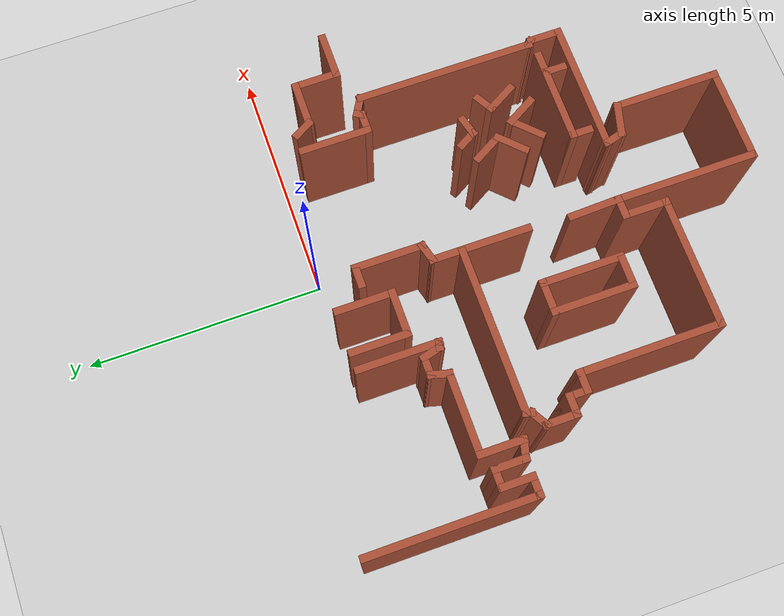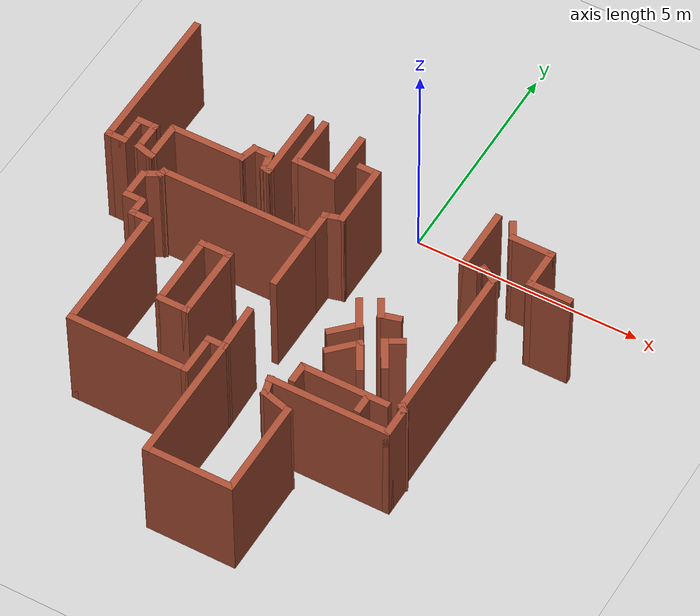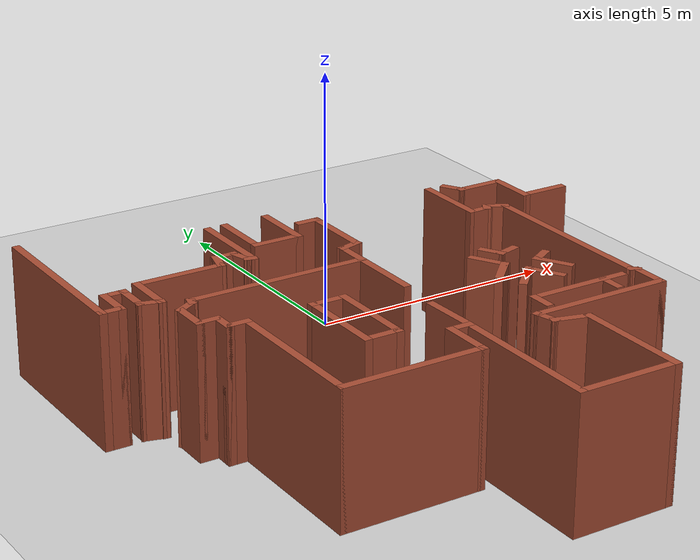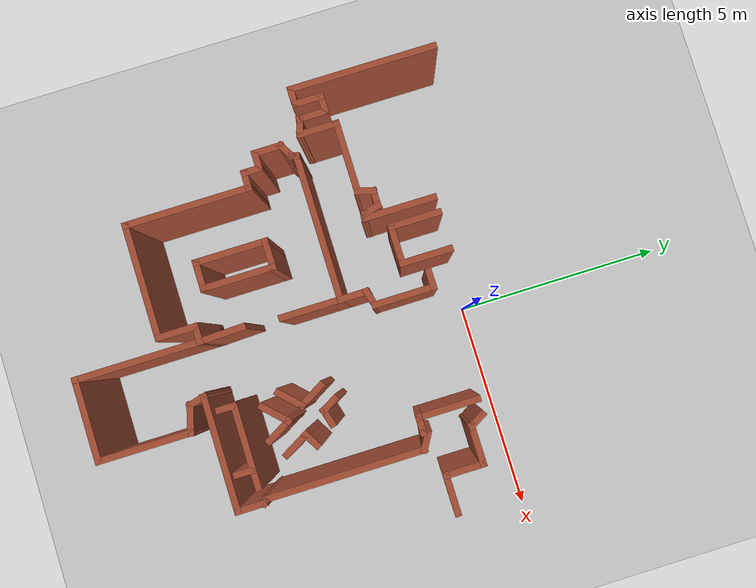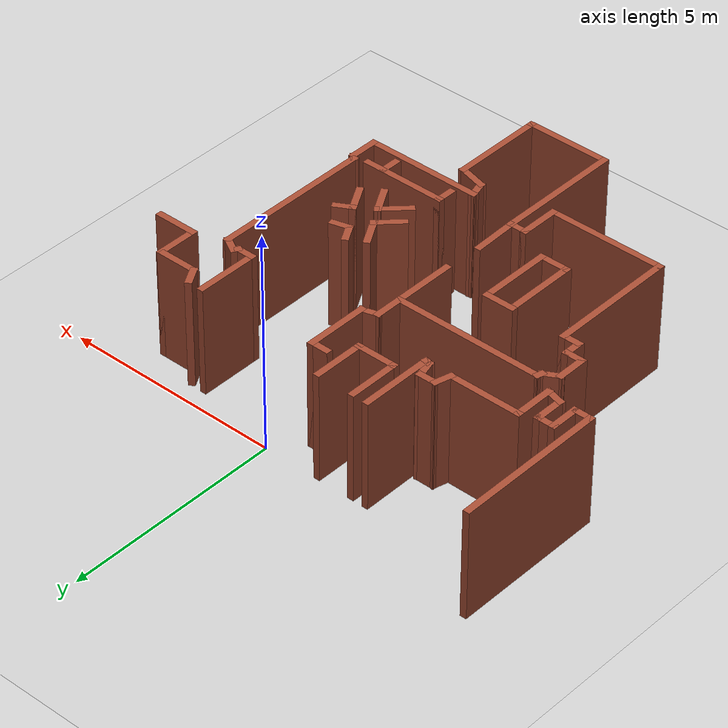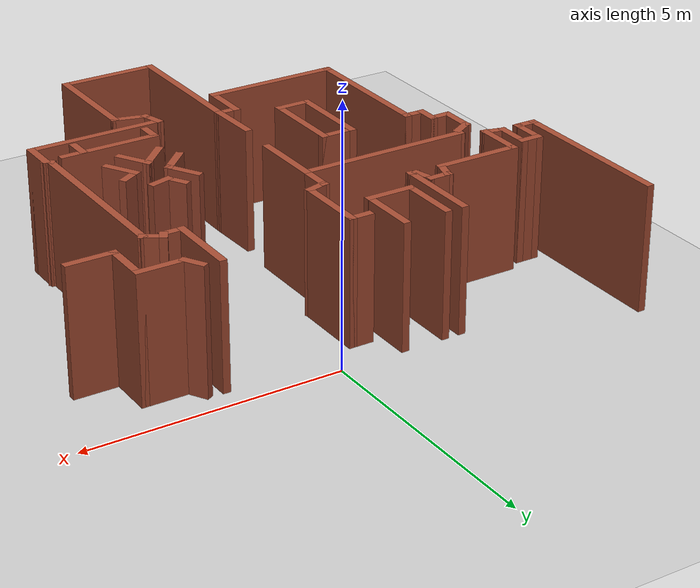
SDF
<sdf version="1.6">
 <world name="default">
  <model name="ground_plane">
   <static>1</static>
   <link name="link">
    <collision name="collision">
     <geometry><plane><normal>0 0 1</normal><size>100 100</size></plane></geometry>
     <surface>
      <contact><collide_bitmask>65535</collide_bitmask></contact>
      <friction><ode><mu>100</mu><mu2>50</mu2></ode></friction>
     </surface>
    </collision>
    <visual name="visual">
     <cast_shadows>0</cast_shadows>
     <geometry><plane><normal>0 0 1</normal><size>100 100</size></plane></geometry>
     <material>
      <script><uri>file://media/materials/scripts/gazebo.material</uri><name>Gazebo/Grey</name></script>
     </material>
    </visual>
   </link>
  </model>
  <model name="map_26">
   <pose>-0.762492 -0.95628 0 0 -0 0</pose>
   <link name="Wall_147">
    <collision name="Wall_147_Collision">
     <geometry><box><size>1.75 0.15 2.5</size></box></geometry>
     <pose>0 0 1.25 0 -0 0</pose>
    </collision>
    <visual name="Wall_147_Visual">
     <pose>0 0 1.25 0 -0 0</pose>
     <geometry><box><size>1.75 0.15 2.5</size></box></geometry>
     <material>
      <script><uri>file://media/materials/scripts/gazebo.material</uri><name>Gazebo/Bricks</name></script>
      <ambient>1 1 1 1</ambient>
     </material>
     <meta><layer>0</layer></meta>
    </visual>
    <pose>-1.90848 -3.76343 0 0 -0 -1.5708</pose>
   </link>
   <link name="Wall_148">
    <collision name="Wall_148_Collision">
     <geometry><box><size>0.75 0.15 2.5</size></box></geometry>
     <pose>0 0 1.25 0 -0 0</pose>
    </collision>
    <visual name="Wall_148_Visual">
     <pose>0 0 1.25 0 -0 0</pose>
     <geometry><box><size>0.75 0.15 2.5</size></box></geometry>
     <material>
      <script><uri>file://media/materials/scripts/gazebo.material</uri><name>Gazebo/Bricks</name></script>
      <ambient>1 1 1 1</ambient>
     </material>
     <meta><layer>0</layer></meta>
    </visual>
    <pose>-1.60848 -4.56343 0 0 -0 0</pose>
   </link>
   <link name="Wall_149">
    <collision name="Wall_149_Collision">
     <geometry><box><size>1.75 0.15 2.5</size></box></geometry>
     <pose>0 0 1.25 0 -0 0</pose>
    </collision>
    <visual name="Wall_149_Visual">
     <pose>0 0 1.25 0 -0 0</pose>
     <geometry><box><size>1.75 0.15 2.5</size></box></geometry>
     <material>
      <script><uri>file://media/materials/scripts/gazebo.material</uri><name>Gazebo/Bricks</name></script>
      <ambient>1 1 1 1</ambient>
     </material>
     <meta><layer>0</layer></meta>
    </visual>
    <pose>-1.30848 -3.76343 0 0 -0 1.5708</pose>
   </link>
   <link name="Wall_150">
    <collision name="Wall_150_Collision">
     <geometry><box><size>0.75 0.15 2.5</size></box></geometry>
     <pose>0 0 1.25 0 -0 0</pose>
    </collision>
    <visual name="Wall_150_Visual">
     <pose>0 0 1.25 0 -0 0</pose>
     <geometry><box><size>0.75 0.15 2.5</size></box></geometry>
     <material>
      <script><uri>file://media/materials/scripts/gazebo.material</uri><name>Gazebo/Bricks</name></script>
      <ambient>1 1 1 1</ambient>
     </material>
     <meta><layer>0</layer></meta>
    </visual>
    <pose>-1.60848 -2.96343 0 0 -0 -3.14159</pose>
   </link>
   <link name="Wall_152">
    <collision name="Wall_152_Collision">
     <geometry><box><size>1.5 0.15 2.5</size></box></geometry>
     <pose>0 0 1.25 0 -0 0</pose>
    </collision>
    <visual name="Wall_152_Visual">
     <pose>0 0 1.25 0 -0 0</pose>
     <geometry><box><size>1.5 0.15 2.5</size></box></geometry>
     <material>
      <script><uri>file://media/materials/scripts/gazebo.material</uri><name>Gazebo/Bricks</name></script>
      <ambient>1 1 1 1</ambient>
     </material>
     <meta><layer>0</layer></meta>
    </visual>
    <pose>-0.181178 -2.42316 0 0 -0 -1.5708</pose>
   </link>
   <link name="Wall_154">
    <collision name="Wall_154_Collision">
     <geometry><box><size>1.13912 0.15 2.5</size></box></geometry>
     <pose>0 0 1.25 0 -0 0</pose>
    </collision>
    <visual name="Wall_154_Visual">
     <pose>0 0 1.25 0 -0 0</pose>
     <geometry><box><size>1.13912 0.15 2.5</size></box></geometry>
     <material>
      <script><uri>file://media/materials/scripts/gazebo.material</uri><name>Gazebo/Bricks</name></script>
      <ambient>1 1 1 1</ambient>
     </material>
     <meta><layer>0</layer></meta>
    </visual>
    <pose>-0.226623 -4.47546 0 0 -0 -1.53752</pose>
   </link>
   <link name="Wall_156">
    <collision name="Wall_156_Collision">
     <geometry><box><size>2 0.15 2.5</size></box></geometry>
     <pose>0 0 1.25 0 -0 0</pose>
    </collision>
    <visual name="Wall_156_Visual">
     <pose>0 0 1.25 0 -0 0</pose>
     <geometry><box><size>2 0.15 2.5</size></box></geometry>
     <material>
      <script><uri>file://media/materials/scripts/gazebo.material</uri><name>Gazebo/Bricks</name></script>
      <ambient>1 1 1 1</ambient>
     </material>
     <meta><layer>0</layer></meta>
    </visual>
    <pose>2.27793 -4.65197 0 0 -0 0</pose>
   </link>
   <link name="Wall_160">
    <collision name="Wall_160_Collision">
     <geometry><box><size>0.5 0.15 2.5</size></box></geometry>
     <pose>0 0 1.25 0 -0 0</pose>
    </collision>
    <visual name="Wall_160_Visual">
     <pose>0 0 1.25 0 -0 0</pose>
     <geometry><box><size>0.5 0.15 2.5</size></box></geometry>
     <material>
      <script><uri>file://media/materials/scripts/gazebo.material</uri><name>Gazebo/Bricks</name></script>
      <ambient>1 1 1 1</ambient>
     </material>
     <meta><layer>0</layer></meta>
    </visual>
    <pose>1.35293 -4.82697 0 0 -0 -1.5708</pose>
   </link>
   <link name="Wall_162">
    <collision name="Wall_162_Collision">
     <geometry><box><size>0.5 0.15 2.5</size></box></geometry>
     <pose>0 0 1.25 0 -0 0</pose>
    </collision>
    <visual name="Wall_162_Visual">
     <pose>0 0 1.25 0 -0 0</pose>
     <geometry><box><size>0.5 0.15 2.5</size></box></geometry>
     <material>
      <script><uri>file://media/materials/scripts/gazebo.material</uri><name>Gazebo/Bricks</name></script>
      <ambient>1 1 1 1</ambient>
     </material>
     <meta><layer>0</layer></meta>
    </visual>
    <pose>2.81016 -4.8501 0 0 -0 -1.5708</pose>
   </link>
   <link name="Wall_164">
    <collision name="Wall_164_Collision">
     <geometry><box><size>0.5 0.15 2.5</size></box></geometry>
     <pose>0 0 1.25 0 -0 0</pose>
    </collision>
    <visual name="Wall_164_Visual">
     <pose>0 0 1.25 0 -0 0</pose>
     <geometry><box><size>0.5 0.15 2.5</size></box></geometry>
     <material>
      <script><uri>file://media/materials/scripts/gazebo.material</uri><name>Gazebo/Bricks</name></script>
      <ambient>1 1 1 1</ambient>
     </material>
     <meta><layer>0</layer></meta>
    </visual>
    <pose>1.94931 -2.65238 0 0 -0 -1.0472</pose>
   </link>
   <link name="Wall_165">
    <collision name="Wall_165_Collision">
     <geometry><box><size>0.5 0.15 2.5</size></box></geometry>
     <pose>0 0 1.25 0 -0 0</pose>
    </collision>
    <visual name="Wall_165_Visual">
     <pose>0 0 1.25 0 -0 0</pose>
     <geometry><box><size>0.5 0.15 2.5</size></box></geometry>
     <material>
      <script><uri>file://media/materials/scripts/gazebo.material</uri><name>Gazebo/Bricks</name></script>
      <ambient>1 1 1 1</ambient>
     </material>
     <meta><layer>0</layer></meta>
    </visual>
    <pose>2.20585 -2.75864 0 0 -0 0.261799</pose>
   </link>
   <link name="Wall_167">
    <collision name="Wall_167_Collision">
     <geometry><box><size>0.75 0.15 2.5</size></box></geometry>
     <pose>0 0 1.25 0 -0 0</pose>
    </collision>
    <visual name="Wall_167_Visual">
     <pose>0 0 1.25 0 -0 0</pose>
     <geometry><box><size>0.75 0.15 2.5</size></box></geometry>
     <material>
      <script><uri>file://media/materials/scripts/gazebo.material</uri><name>Gazebo/Bricks</name></script>
      <ambient>1 1 1 1</ambient>
     </material>
     <meta><layer>0</layer></meta>
    </visual>
    <pose>1.64172 -2.96881 0 0 -0 -1.0472</pose>
   </link>
   <link name="Wall_173">
    <collision name="Wall_173_Collision">
     <geometry><box><size>0.75 0.15 2.5</size></box></geometry>
     <pose>0 0 1.25 0 -0 0</pose>
    </collision>
    <visual name="Wall_173_Visual">
     <pose>0 0 1.25 0 -0 0</pose>
     <geometry><box><size>0.75 0.15 2.5</size></box></geometry>
     <material>
      <script><uri>file://media/materials/scripts/gazebo.material</uri><name>Gazebo/Bricks</name></script>
      <ambient>1 1 1 1</ambient>
     </material>
     <meta><layer>0</layer></meta>
    </visual>
    <pose>1.57959 -3.44075 0 0 -0 -2.35619</pose>
   </link>
   <link name="Wall_178">
    <collision name="Wall_178_Collision">
     <geometry><box><size>0.5 0.15 2.5</size></box></geometry>
     <pose>0 0 1.25 0 -0 0</pose>
    </collision>
    <visual name="Wall_178_Visual">
     <pose>0 0 1.25 0 -0 0</pose>
     <geometry><box><size>0.5 0.15 2.5</size></box></geometry>
     <material>
      <script><uri>file://media/materials/scripts/gazebo.material</uri><name>Gazebo/Bricks</name></script>
      <ambient>1 1 1 1</ambient>
     </material>
     <meta><layer>0</layer></meta>
    </visual>
    <pose>2.5685 -3.24602 0 0 -0 0.523599</pose>
   </link>
   <link name="Wall_180">
    <collision name="Wall_180_Collision">
     <geometry><box><size>0.75 0.15 2.5</size></box></geometry>
     <pose>0 0 1.25 0 -0 0</pose>
    </collision>
    <visual name="Wall_180_Visual">
     <pose>0 0 1.25 0 -0 0</pose>
     <geometry><box><size>0.75 0.15 2.5</size></box></geometry>
     <material>
      <script><uri>file://media/materials/scripts/gazebo.material</uri><name>Gazebo/Bricks</name></script>
      <ambient>1 1 1 1</ambient>
     </material>
     <meta><layer>0</layer></meta>
    </visual>
    <pose>2.56694 -3.59333 0 0 -0 -1.0472</pose>
   </link>
   <link name="Wall_182">
    <collision name="Wall_182_Collision">
     <geometry><box><size>0.75 0.15 2.5</size></box></geometry>
     <pose>0 0 1.25 0 -0 0</pose>
    </collision>
    <visual name="Wall_182_Visual">
     <pose>0 0 1.25 0 -0 0</pose>
     <geometry><box><size>0.75 0.15 2.5</size></box></geometry>
     <material>
      <script><uri>file://media/materials/scripts/gazebo.material</uri><name>Gazebo/Bricks</name></script>
      <ambient>1 1 1 1</ambient>
     </material>
     <meta><layer>0</layer></meta>
    </visual>
    <pose>2.17372 -3.8709 0 0 -0 -1.0472</pose>
   </link>
   <link name="Wall_184">
    <collision name="Wall_184_Collision">
     <geometry><box><size>0.804232 0.15 2.5</size></box></geometry>
     <pose>0 0 1.25 0 -0 0</pose>
    </collision>
    <visual name="Wall_184_Visual">
     <pose>0 0 1.25 0 -0 0</pose>
     <geometry><box><size>0.804232 0.15 2.5</size></box></geometry>
     <material>
      <script><uri>file://media/materials/scripts/gazebo.material</uri><name>Gazebo/Bricks</name></script>
      <ambient>1 1 1 1</ambient>
     </material>
     <meta><layer>0</layer></meta>
    </visual>
    <pose>1.79242 -3.8424 0 0 -0 0.785398</pose>
   </link>
   <link name="Wall_31">
    <collision name="Wall_31_Collision">
     <geometry><box><size>3.5 0.15 2.5</size></box></geometry>
     <pose>0 0 1.25 0 -0 0</pose>
    </collision>
    <visual name="Wall_31_Visual">
     <pose>0 0 1.25 0 -0 0</pose>
     <geometry><box><size>3.5 0.15 2.5</size></box></geometry>
     <material>
      <script><uri>file://media/materials/scripts/gazebo.material</uri><name>Gazebo/Bricks</name></script>
      <ambient>1 1 1 1</ambient>
     </material>
     <meta><layer>0</layer></meta>
    </visual>
    <pose>-5.00894 0.233898 0 0 -0 -1.5708</pose>
   </link>
   <link name="Wall_32">
    <collision name="Wall_32_Collision">
     <geometry><box><size>0.5 0.15 2.5</size></box></geometry>
     <pose>0 0 1.25 0 -0 0</pose>
    </collision>
    <visual name="Wall_32_Visual">
     <pose>0 0 1.25 0 -0 0</pose>
     <geometry><box><size>0.5 0.15 2.5</size></box></geometry>
     <material>
      <script><uri>file://media/materials/scripts/gazebo.material</uri><name>Gazebo/Bricks</name></script>
      <ambient>1 1 1 1</ambient>
     </material>
     <meta><layer>0</layer></meta>
    </visual>
    <pose>-4.83394 -1.4411 0 0 -0 0</pose>
   </link>
   <link name="Wall_35">
    <collision name="Wall_35_Collision">
     <geometry><box><size>0.75 0.15 2.5</size></box></geometry>
     <pose>0 0 1.25 0 -0 0</pose>
    </collision>
    <visual name="Wall_35_Visual">
     <pose>0 0 1.25 0 -0 0</pose>
     <geometry><box><size>0.75 0.15 2.5</size></box></geometry>
     <material>
      <script><uri>file://media/materials/scripts/gazebo.material</uri><name>Gazebo/Bricks</name></script>
      <ambient>1 1 1 1</ambient>
     </material>
     <meta><layer>0</layer></meta>
    </visual>
    <pose>-4.65894 -1.1411 0 0 -0 1.5708</pose>
   </link>
   <link name="Wall_36">
    <collision name="Wall_36_Collision">
     <geometry><box><size>0.5 0.15 2.5</size></box></geometry>
     <pose>0 0 1.25 0 -0 0</pose>
    </collision>
    <visual name="Wall_36_Visual">
     <pose>0 0 1.25 0 -0 0</pose>
     <geometry><box><size>0.5 0.15 2.5</size></box></geometry>
     <material>
      <script><uri>file://media/materials/scripts/gazebo.material</uri><name>Gazebo/Bricks</name></script>
      <ambient>1 1 1 1</ambient>
     </material>
     <meta><layer>0</layer></meta>
    </visual>
    <pose>-4.48394 -0.841102 0 0 -0 0</pose>
   </link>
   <link name="Wall_37">
    <collision name="Wall_37_Collision">
     <geometry><box><size>0.75 0.15 2.5</size></box></geometry>
     <pose>0 0 1.25 0 -0 0</pose>
    </collision>
    <visual name="Wall_37_Visual">
     <pose>0 0 1.25 0 -0 0</pose>
     <geometry><box><size>0.75 0.15 2.5</size></box></geometry>
     <material>
      <script><uri>file://media/materials/scripts/gazebo.material</uri><name>Gazebo/Bricks</name></script>
      <ambient>1 1 1 1</ambient>
     </material>
     <meta><layer>0</layer></meta>
    </visual>
    <pose>-4.30894 -1.1411 0 0 -0 -1.5708</pose>
   </link>
   <link name="Wall_38">
    <collision name="Wall_38_Collision">
     <geometry><box><size>0.5 0.15 2.5</size></box></geometry>
     <pose>0 0 1.25 0 -0 0</pose>
    </collision>
    <visual name="Wall_38_Visual">
     <pose>0 0 1.25 0 -0 0</pose>
     <geometry><box><size>0.5 0.15 2.5</size></box></geometry>
     <material>
      <script><uri>file://media/materials/scripts/gazebo.material</uri><name>Gazebo/Bricks</name></script>
      <ambient>1 1 1 1</ambient>
     </material>
     <meta><layer>0</layer></meta>
    </visual>
    <pose>-4.13991 -1.48639 0 0 -0 -0.261799</pose>
   </link>
   <link name="Wall_41">
    <collision name="Wall_41_Collision">
     <geometry><box><size>1 0.15 2.5</size></box></geometry>
     <pose>0 0 1.25 0 -0 0</pose>
    </collision>
    <visual name="Wall_41_Visual">
     <pose>0 0 1.25 0 -0 0</pose>
     <geometry><box><size>1 0.15 2.5</size></box></geometry>
     <material>
      <script><uri>file://media/materials/scripts/gazebo.material</uri><name>Gazebo/Bricks</name></script>
      <ambient>1 1 1 1</ambient>
     </material>
     <meta><layer>0</layer></meta>
    </visual>
    <pose>-3.97087 -1.10669 0 0 -0 1.5708</pose>
   </link>
   <link name="Wall_45">
    <collision name="Wall_45_Collision">
     <geometry><box><size>1.75 0.15 2.5</size></box></geometry>
     <pose>0 0 1.25 0 -0 0</pose>
    </collision>
    <visual name="Wall_45_Visual">
     <pose>0 0 1.25 0 -0 0</pose>
     <geometry><box><size>1.75 0.15 2.5</size></box></geometry>
     <material>
      <script><uri>file://media/materials/scripts/gazebo.material</uri><name>Gazebo/Bricks</name></script>
      <ambient>1 1 1 1</ambient>
     </material>
     <meta><layer>0</layer></meta>
    </visual>
    <pose>-3.17087 -0.681688 0 0 -0 0</pose>
   </link>
   <link name="Wall_46">
    <collision name="Wall_46_Collision">
     <geometry><box><size>0.5 0.15 2.5</size></box></geometry>
     <pose>0 0 1.25 0 -0 0</pose>
    </collision>
    <visual name="Wall_46_Visual">
     <pose>0 0 1.25 0 -0 0</pose>
     <geometry><box><size>0.5 0.15 2.5</size></box></geometry>
     <material>
      <script><uri>file://media/materials/scripts/gazebo.material</uri><name>Gazebo/Bricks</name></script>
      <ambient>1 1 1 1</ambient>
     </material>
     <meta><layer>0</layer></meta>
    </visual>
    <pose>-2.32558 -0.512651 0 0 -0 1.309</pose>
   </link>
   <link name="Wall_47">
    <collision name="Wall_47_Collision">
     <geometry><box><size>0.5 0.15 2.5</size></box></geometry>
     <pose>0 0 1.25 0 -0 0</pose>
    </collision>
    <visual name="Wall_47_Visual">
     <pose>0 0 1.25 0 -0 0</pose>
     <geometry><box><size>0.5 0.15 2.5</size></box></geometry>
     <material>
      <script><uri>file://media/materials/scripts/gazebo.material</uri><name>Gazebo/Bricks</name></script>
      <ambient>1 1 1 1</ambient>
     </material>
     <meta><layer>0</layer></meta>
    </visual>
    <pose>-2.10528 -0.343614 0 0 -0 0</pose>
   </link>
   <link name="Wall_48">
    <collision name="Wall_48_Collision">
     <geometry><box><size>0.5 0.15 2.5</size></box></geometry>
     <pose>0 0 1.25 0 -0 0</pose>
    </collision>
    <visual name="Wall_48_Visual">
     <pose>0 0 1.25 0 -0 0</pose>
     <geometry><box><size>0.5 0.15 2.5</size></box></geometry>
     <material>
      <script><uri>file://media/materials/scripts/gazebo.material</uri><name>Gazebo/Bricks</name></script>
      <ambient>1 1 1 1</ambient>
     </material>
     <meta><layer>0</layer></meta>
    </visual>
    <pose>-1.88499 -0.512651 0 0 -0 -1.309</pose>
   </link>
   <link name="Wall_49">
    <collision name="Wall_49_Collision">
     <geometry><box><size>0.25 0.15 2.5</size></box></geometry>
     <pose>0 0 1.25 0 -0 0</pose>
    </collision>
    <visual name="Wall_49_Visual">
     <pose>0 0 1.25 0 -0 0</pose>
     <geometry><box><size>0.25 0.15 2.5</size></box></geometry>
     <material>
      <script><uri>file://media/materials/scripts/gazebo.material</uri><name>Gazebo/Bricks</name></script>
      <ambient>1 1 1 1</ambient>
     </material>
     <meta><layer>0</layer></meta>
    </visual>
    <pose>-1.7914 -0.694629 0 0 -0 -0.261799</pose>
   </link>
   <link name="Wall_50">
    <collision name="Wall_50_Collision">
     <geometry><box><size>1.75 0.15 2.5</size></box></geometry>
     <pose>0 0 1.25 0 -0 0</pose>
    </collision>
    <visual name="Wall_50_Visual">
     <pose>0 0 1.25 0 -0 0</pose>
     <geometry><box><size>1.75 0.15 2.5</size></box></geometry>
     <material>
      <script><uri>file://media/materials/scripts/gazebo.material</uri><name>Gazebo/Bricks</name></script>
      <ambient>1 1 1 1</ambient>
     </material>
     <meta><layer>0</layer></meta>
    </visual>
    <pose>-1.7431 0.09243 0 0 -0 1.5708</pose>
   </link>
   <link name="Wall_52">
    <collision name="Wall_52_Collision">
     <geometry><box><size>1.25 0.15 2.5</size></box></geometry>
     <pose>0 0 1.25 0 -0 0</pose>
    </collision>
    <visual name="Wall_52_Visual">
     <pose>0 0 1.25 0 -0 0</pose>
     <geometry><box><size>1.25 0.15 2.5</size></box></geometry>
     <material>
      <script><uri>file://media/materials/scripts/gazebo.material</uri><name>Gazebo/Bricks</name></script>
      <ambient>1 1 1 1</ambient>
     </material>
     <meta><layer>0</layer></meta>
    </visual>
    <pose>-1.3931 0.34243 0 0 -0 -1.5708</pose>
   </link>
   <link name="Wall_53">
    <collision name="Wall_53_Collision">
     <geometry><box><size>1 0.15 2.5</size></box></geometry>
     <pose>0 0 1.25 0 -0 0</pose>
    </collision>
    <visual name="Wall_53_Visual">
     <pose>0 0 1.25 0 -0 0</pose>
     <geometry><box><size>1 0.15 2.5</size></box></geometry>
     <material>
      <script><uri>file://media/materials/scripts/gazebo.material</uri><name>Gazebo/Bricks</name></script>
      <ambient>1 1 1 1</ambient>
     </material>
     <meta><layer>0</layer></meta>
    </visual>
    <pose>-0.968104 -0.20757 0 0 -0 0</pose>
   </link>
   <link name="Wall_54">
    <collision name="Wall_54_Collision">
     <geometry><box><size>1.25 0.15 2.5</size></box></geometry>
     <pose>0 0 1.25 0 -0 0</pose>
    </collision>
    <visual name="Wall_54_Visual">
     <pose>0 0 1.25 0 -0 0</pose>
     <geometry><box><size>1.25 0.15 2.5</size></box></geometry>
     <material>
      <script><uri>file://media/materials/scripts/gazebo.material</uri><name>Gazebo/Bricks</name></script>
      <ambient>1 1 1 1</ambient>
     </material>
     <meta><layer>0</layer></meta>
    </visual>
    <pose>-0.543104 0.34243 0 0 -0 1.5708</pose>
   </link>
   <link name="Wall_57">
    <collision name="Wall_57_Collision">
     <geometry><box><size>0.5 0.15 2.5</size></box></geometry>
     <pose>0 0 1.25 0 -0 0</pose>
    </collision>
    <visual name="Wall_57_Visual">
     <pose>0 0 1.25 0 -0 0</pose>
     <geometry><box><size>0.5 0.15 2.5</size></box></geometry>
     <material>
      <script><uri>file://media/materials/scripts/gazebo.material</uri><name>Gazebo/Bricks</name></script>
      <ambient>1 1 1 1</ambient>
     </material>
     <meta><layer>0</layer></meta>
    </visual>
    <pose>-0.018104 0.29243 0 0 -0 0</pose>
   </link>
   <link name="Wall_58">
    <collision name="Wall_58_Collision">
     <geometry><box><size>1.5 0.15 2.5</size></box></geometry>
     <pose>0 0 1.25 0 -0 0</pose>
    </collision>
    <visual name="Wall_58_Visual">
     <pose>0 0 1.25 0 -0 0</pose>
     <geometry><box><size>1.5 0.15 2.5</size></box></geometry>
     <material>
      <script><uri>file://media/materials/scripts/gazebo.material</uri><name>Gazebo/Bricks</name></script>
      <ambient>1 1 1 1</ambient>
     </material>
     <meta><layer>0</layer></meta>
    </visual>
    <pose>0.156896 -0.38257 0 0 -0 -1.5708</pose>
   </link>
   <link name="Wall_59">
    <collision name="Wall_59_Collision">
     <geometry><box><size>0.5 0.15 2.5</size></box></geometry>
     <pose>0 0 1.25 0 -0 0</pose>
    </collision>
    <visual name="Wall_59_Visual">
     <pose>0 0 1.25 0 -0 0</pose>
     <geometry><box><size>0.5 0.15 2.5</size></box></geometry>
     <material>
      <script><uri>file://media/materials/scripts/gazebo.material</uri><name>Gazebo/Bricks</name></script>
      <ambient>1 1 1 1</ambient>
     </material>
     <meta><layer>0</layer></meta>
    </visual>
    <pose>-0.012141 -1.10286 0 0 -0 -2.87979</pose>
   </link>
   <link name="Wall_60">
    <collision name="Wall_60_Collision">
     <geometry><box><size>0.75 0.15 2.5</size></box></geometry>
     <pose>0 0 1.25 0 -0 0</pose>
    </collision>
    <visual name="Wall_60_Visual">
     <pose>0 0 1.25 0 -0 0</pose>
     <geometry><box><size>0.75 0.15 2.5</size></box></geometry>
     <material>
      <script><uri>file://media/materials/scripts/gazebo.material</uri><name>Gazebo/Bricks</name></script>
      <ambient>1 1 1 1</ambient>
     </material>
     <meta><layer>0</layer></meta>
    </visual>
    <pose>-0.181178 -1.44816 0 0 -0 -1.5708</pose>
   </link>
   <link name="Wall_61">
    <collision name="Wall_61_Collision">
     <geometry><box><size>3.5 0.15 2.5</size></box></geometry>
     <pose>0 0 1.25 0 -0 0</pose>
    </collision>
    <visual name="Wall_61_Visual">
     <pose>0 0 1.25 0 -0 0</pose>
     <geometry><box><size>3.5 0.15 2.5</size></box></geometry>
     <material>
      <script><uri>file://media/materials/scripts/gazebo.material</uri><name>Gazebo/Bricks</name></script>
      <ambient>1 1 1 1</ambient>
     </material>
     <meta><layer>0</layer></meta>
    </visual>
    <pose>-1.85618 -1.74816 0 0 -0 3.14159</pose>
   </link>
   <link name="Wall_62">
    <collision name="Wall_62_Collision">
     <geometry><box><size>0.25 0.15 2.5</size></box></geometry>
     <pose>0 0 1.25 0 -0 0</pose>
    </collision>
    <visual name="Wall_62_Visual">
     <pose>0 0 1.25 0 -0 0</pose>
     <geometry><box><size>0.25 0.15 2.5</size></box></geometry>
     <material>
      <script><uri>file://media/materials/scripts/gazebo.material</uri><name>Gazebo/Bricks</name></script>
      <ambient>1 1 1 1</ambient>
     </material>
     <meta><layer>0</layer></meta>
    </visual>
    <pose>-3.54412 -1.79645 0 0 -0 -1.8326</pose>
   </link>
   <link name="Wall_63">
    <collision name="Wall_63_Collision">
     <geometry><box><size>0.5 0.15 2.5</size></box></geometry>
     <pose>0 0 1.25 0 -0 0</pose>
    </collision>
    <visual name="Wall_63_Visual">
     <pose>0 0 1.25 0 -0 0</pose>
     <geometry><box><size>0.5 0.15 2.5</size></box></geometry>
     <material>
      <script><uri>file://media/materials/scripts/gazebo.material</uri><name>Gazebo/Bricks</name></script>
      <ambient>1 1 1 1</ambient>
     </material>
     <meta><layer>0</layer></meta>
    </visual>
    <pose>-3.70861 -1.93225 0 0 -0 -2.61799</pose>
   </link>
   <link name="Wall_64">
    <collision name="Wall_64_Collision">
     <geometry><box><size>0.75 0.15 2.5</size></box></geometry>
     <pose>0 0 1.25 0 -0 0</pose>
    </collision>
    <visual name="Wall_64_Visual">
     <pose>0 0 1.25 0 -0 0</pose>
     <geometry><box><size>0.75 0.15 2.5</size></box></geometry>
     <material>
      <script><uri>file://media/materials/scripts/gazebo.material</uri><name>Gazebo/Bricks</name></script>
      <ambient>1 1 1 1</ambient>
     </material>
     <meta><layer>0</layer></meta>
    </visual>
    <pose>-3.86017 -2.31975 0 0 -0 -1.5708</pose>
   </link>
   <link name="Wall_65">
    <collision name="Wall_65_Collision">
     <geometry><box><size>0.5 0.15 2.5</size></box></geometry>
     <pose>0 0 1.25 0 -0 0</pose>
    </collision>
    <visual name="Wall_65_Visual">
     <pose>0 0 1.25 0 -0 0</pose>
     <geometry><box><size>0.5 0.15 2.5</size></box></geometry>
     <material>
      <script><uri>file://media/materials/scripts/gazebo.material</uri><name>Gazebo/Bricks</name></script>
      <ambient>1 1 1 1</ambient>
     </material>
     <meta><layer>0</layer></meta>
    </visual>
    <pose>-3.68517 -2.61975 0 0 -0 0</pose>
   </link>
   <link name="Wall_66">
    <collision name="Wall_66_Collision">
     <geometry><box><size>0.5 0.15 2.5</size></box></geometry>
     <pose>0 0 1.25 0 -0 0</pose>
    </collision>
    <visual name="Wall_66_Visual">
     <pose>0 0 1.25 0 -0 0</pose>
     <geometry><box><size>0.5 0.15 2.5</size></box></geometry>
     <material>
      <script><uri>file://media/materials/scripts/gazebo.material</uri><name>Gazebo/Bricks</name></script>
      <ambient>1 1 1 1</ambient>
     </material>
     <meta><layer>0</layer></meta>
    </visual>
    <pose>-3.51017 -2.79475 0 0 -0 -1.5708</pose>
   </link>
   <link name="Wall_67">
    <collision name="Wall_67_Collision">
     <geometry><box><size>0.5 0.15 2.5</size></box></geometry>
     <pose>0 0 1.25 0 -0 0</pose>
    </collision>
    <visual name="Wall_67_Visual">
     <pose>0 0 1.25 0 -0 0</pose>
     <geometry><box><size>0.5 0.15 2.5</size></box></geometry>
     <material>
      <script><uri>file://media/materials/scripts/gazebo.material</uri><name>Gazebo/Bricks</name></script>
      <ambient>1 1 1 1</ambient>
     </material>
     <meta><layer>0</layer></meta>
    </visual>
    <pose>-3.33517 -2.96975 0 0 -0 0</pose>
   </link>
   <link name="Wall_68">
    <collision name="Wall_68_Collision">
     <geometry><box><size>3 0.15 2.5</size></box></geometry>
     <pose>0 0 1.25 0 -0 0</pose>
    </collision>
    <visual name="Wall_68_Visual">
     <pose>0 0 1.25 0 -0 0</pose>
     <geometry><box><size>3 0.15 2.5</size></box></geometry>
     <material>
      <script><uri>file://media/materials/scripts/gazebo.material</uri><name>Gazebo/Bricks</name></script>
      <ambient>1 1 1 1</ambient>
     </material>
     <meta><layer>0</layer></meta>
    </visual>
    <pose>-3.16017 -4.39475 0 0 -0 -1.5708</pose>
   </link>
   <link name="Wall_69">
    <collision name="Wall_69_Collision">
     <geometry><box><size>2.75 0.15 2.5</size></box></geometry>
     <pose>0 0 1.25 0 -0 0</pose>
    </collision>
    <visual name="Wall_69_Visual">
     <pose>0 0 1.25 0 -0 0</pose>
     <geometry><box><size>2.75 0.15 2.5</size></box></geometry>
     <material>
      <script><uri>file://media/materials/scripts/gazebo.material</uri><name>Gazebo/Bricks</name></script>
      <ambient>1 1 1 1</ambient>
     </material>
     <meta><layer>0</layer></meta>
    </visual>
    <pose>-1.86017 -5.81975 0 0 -0 0</pose>
   </link>
   <link name="Wall_71">
    <collision name="Wall_71_Collision">
     <geometry><box><size>1 0.15 2.5</size></box></geometry>
     <pose>0 0 1.25 0 -0 0</pose>
    </collision>
    <visual name="Wall_71_Visual">
     <pose>0 0 1.25 0 -0 0</pose>
     <geometry><box><size>1 0.15 2.5</size></box></geometry>
     <material>
      <script><uri>file://media/materials/scripts/gazebo.material</uri><name>Gazebo/Bricks</name></script>
      <ambient>1 1 1 1</ambient>
     </material>
     <meta><layer>0</layer></meta>
    </visual>
    <pose>-0.560168 -5.39475 0 0 -0 1.5708</pose>
   </link>
   <link name="Wall_72">
    <collision name="Wall_72_Collision">
     <geometry><box><size>0.5 0.15 2.5</size></box></geometry>
     <pose>0 0 1.25 0 -0 0</pose>
    </collision>
    <visual name="Wall_72_Visual">
     <pose>0 0 1.25 0 -0 0</pose>
     <geometry><box><size>0.5 0.15 2.5</size></box></geometry>
     <material>
      <script><uri>file://media/materials/scripts/gazebo.material</uri><name>Gazebo/Bricks</name></script>
      <ambient>1 1 1 1</ambient>
     </material>
     <meta><layer>0</layer></meta>
    </visual>
    <pose>-0.385168 -4.96975 0 0 -0 0</pose>
   </link>
   <link name="Wall_73">
    <collision name="Wall_73_Collision">
     <geometry><box><size>3 0.15 2.5</size></box></geometry>
     <pose>0 0 1.25 0 -0 0</pose>
    </collision>
    <visual name="Wall_73_Visual">
     <pose>0 0 1.25 0 -0 0</pose>
     <geometry><box><size>3 0.15 2.5</size></box></geometry>
     <material>
      <script><uri>file://media/materials/scripts/gazebo.material</uri><name>Gazebo/Bricks</name></script>
      <ambient>1 1 1 1</ambient>
     </material>
     <meta><layer>0</layer></meta>
    </visual>
    <pose>-0.210168 -6.39475 0 0 -0 -1.5708</pose>
   </link>
   <link name="Wall_76">
    <collision name="Wall_76_Collision">
     <geometry><box><size>2 0.15 2.5</size></box></geometry>
     <pose>0 0 1.25 0 -0 0</pose>
    </collision>
    <visual name="Wall_76_Visual">
     <pose>0 0 1.25 0 -0 0</pose>
     <geometry><box><size>2 0.15 2.5</size></box></geometry>
     <material>
      <script><uri>file://media/materials/scripts/gazebo.material</uri><name>Gazebo/Bricks</name></script>
      <ambient>1 1 1 1</ambient>
     </material>
     <meta><layer>0</layer></meta>
    </visual>
    <pose>0.714832 -7.81975 0 0 -0 0</pose>
   </link>
   <link name="Wall_77">
    <collision name="Wall_77_Collision">
     <geometry><box><size>2.25 0.15 2.5</size></box></geometry>
     <pose>0 0 1.25 0 -0 0</pose>
    </collision>
    <visual name="Wall_77_Visual">
     <pose>0 0 1.25 0 -0 0</pose>
     <geometry><box><size>2.25 0.15 2.5</size></box></geometry>
     <material>
      <script><uri>file://media/materials/scripts/gazebo.material</uri><name>Gazebo/Bricks</name></script>
      <ambient>1 1 1 1</ambient>
     </material>
     <meta><layer>0</layer></meta>
    </visual>
    <pose>1.63983 -6.76975 0 0 -0 1.5708</pose>
   </link>
   <link name="Wall_78">
    <collision name="Wall_78_Collision">
     <geometry><box><size>0.75 0.15 2.5</size></box></geometry>
     <pose>0 0 1.25 0 -0 0</pose>
    </collision>
    <visual name="Wall_78_Visual">
     <pose>0 0 1.25 0 -0 0</pose>
     <geometry><box><size>0.75 0.15 2.5</size></box></geometry>
     <material>
      <script><uri>file://media/materials/scripts/gazebo.material</uri><name>Gazebo/Bricks</name></script>
      <ambient>1 1 1 1</ambient>
     </material>
     <meta><layer>0</layer></meta>
    </visual>
    <pose>1.35005 -5.6421 0 0 -0 2.87979</pose>
   </link>
   <link name="Wall_79">
    <collision name="Wall_79_Collision">
     <geometry><box><size>0.5 0.15 2.5</size></box></geometry>
     <pose>0 0 1.25 0 -0 0</pose>
    </collision>
    <visual name="Wall_79_Visual">
     <pose>0 0 1.25 0 -0 0</pose>
     <geometry><box><size>0.5 0.15 2.5</size></box></geometry>
     <material>
      <script><uri>file://media/materials/scripts/gazebo.material</uri><name>Gazebo/Bricks</name></script>
      <ambient>1 1 1 1</ambient>
     </material>
     <meta><layer>0</layer></meta>
    </visual>
    <pose>1.01498 -5.39542 0 0 -0 1.8326</pose>
   </link>
   <link name="Wall_80">
    <collision name="Wall_80_Collision">
     <geometry><box><size>2.75 0.15 2.5</size></box></geometry>
     <pose>0 0 1.25 0 -0 0</pose>
    </collision>
    <visual name="Wall_80_Visual">
     <pose>0 0 1.25 0 -0 0</pose>
     <geometry><box><size>2.75 0.15 2.5</size></box></geometry>
     <material>
      <script><uri>file://media/materials/scripts/gazebo.material</uri><name>Gazebo/Bricks</name></script>
      <ambient>1 1 1 1</ambient>
     </material>
     <meta><layer>0</layer></meta>
    </visual>
    <pose>2.26969 -5.22638 0 0 -0 0</pose>
   </link>
   <link name="Wall_81">
    <collision name="Wall_81_Collision">
     <geometry><box><size>0.75 0.15 2.5</size></box></geometry>
     <pose>0 0 1.25 0 -0 0</pose>
    </collision>
    <visual name="Wall_81_Visual">
     <pose>0 0 1.25 0 -0 0</pose>
     <geometry><box><size>0.75 0.15 2.5</size></box></geometry>
     <material>
      <script><uri>file://media/materials/scripts/gazebo.material</uri><name>Gazebo/Bricks</name></script>
      <ambient>1 1 1 1</ambient>
     </material>
     <meta><layer>0</layer></meta>
    </visual>
    <pose>3.56969 -4.92638 0 0 -0 1.5708</pose>
   </link>
   <link name="Wall_82">
    <collision name="Wall_82_Collision">
     <geometry><box><size>0.25 0.15 2.5</size></box></geometry>
     <pose>0 0 1.25 0 -0 0</pose>
    </collision>
    <visual name="Wall_82_Visual">
     <pose>0 0 1.25 0 -0 0</pose>
     <geometry><box><size>0.25 0.15 2.5</size></box></geometry>
     <material>
      <script><uri>file://media/materials/scripts/gazebo.material</uri><name>Gazebo/Bricks</name></script>
      <ambient>1 1 1 1</ambient>
     </material>
     <meta><layer>0</layer></meta>
    </visual>
    <pose>3.53433 -4.59103 0 0 -0 2.35619</pose>
   </link>
   <link name="Wall_83">
    <collision name="Wall_83_Collision">
     <geometry><box><size>3.75 0.15 2.5</size></box></geometry>
     <pose>0 0 1.25 0 -0 0</pose>
    </collision>
    <visual name="Wall_83_Visual">
     <pose>0 0 1.25 0 -0 0</pose>
     <geometry><box><size>3.75 0.15 2.5</size></box></geometry>
     <material>
      <script><uri>file://media/materials/scripts/gazebo.material</uri><name>Gazebo/Bricks</name></script>
      <ambient>1 1 1 1</ambient>
     </material>
     <meta><layer>0</layer></meta>
    </visual>
    <pose>3.49898 -2.75567 0 0 -0 1.5708</pose>
   </link>
   <link name="Wall_84">
    <collision name="Wall_84_Collision">
     <geometry><box><size>0.5 0.15 2.5</size></box></geometry>
     <pose>0 0 1.25 0 -0 0</pose>
    </collision>
    <visual name="Wall_84_Visual">
     <pose>0 0 1.25 0 -0 0</pose>
     <geometry><box><size>0.5 0.15 2.5</size></box></geometry>
     <material>
      <script><uri>file://media/materials/scripts/gazebo.material</uri><name>Gazebo/Bricks</name></script>
      <ambient>1 1 1 1</ambient>
     </material>
     <meta><layer>0</layer></meta>
    </visual>
    <pose>3.34742 -0.868173 0 0 -0 2.61799</pose>
   </link>
   <link name="Wall_85">
    <collision name="Wall_85_Collision">
     <geometry><box><size>0.25 0.15 2.5</size></box></geometry>
     <pose>0 0 1.25 0 -0 0</pose>
    </collision>
    <visual name="Wall_85_Visual">
     <pose>0 0 1.25 0 -0 0</pose>
     <geometry><box><size>0.25 0.15 2.5</size></box></geometry>
     <material>
      <script><uri>file://media/materials/scripts/gazebo.material</uri><name>Gazebo/Bricks</name></script>
      <ambient>1 1 1 1</ambient>
     </material>
     <meta><layer>0</layer></meta>
    </visual>
    <pose>3.17087 -0.823975 0 0 -0 -2.0944</pose>
   </link>
   <link name="Wall_86">
    <collision name="Wall_86_Collision">
     <geometry><box><size>0.5 0.15 2.5</size></box></geometry>
     <pose>0 0 1.25 0 -0 0</pose>
    </collision>
    <visual name="Wall_86_Visual">
     <pose>0 0 1.25 0 -0 0</pose>
     <geometry><box><size>0.5 0.15 2.5</size></box></geometry>
     <material>
      <script><uri>file://media/materials/scripts/gazebo.material</uri><name>Gazebo/Bricks</name></script>
      <ambient>1 1 1 1</ambient>
     </material>
     <meta><layer>0</layer></meta>
    </visual>
    <pose>2.97087 -0.867276 0 0 -0 3.14159</pose>
   </link>
   <link name="Wall_89">
    <collision name="Wall_89_Collision">
     <geometry><box><size>1.5 0.15 2.5</size></box></geometry>
     <pose>0 0 1.25 0 -0 0</pose>
    </collision>
    <visual name="Wall_89_Visual">
     <pose>0 0 1.25 0 -0 0</pose>
     <geometry><box><size>1.5 0.15 2.5</size></box></geometry>
     <material>
      <script><uri>file://media/materials/scripts/gazebo.material</uri><name>Gazebo/Bricks</name></script>
      <ambient>1 1 1 1</ambient>
     </material>
     <meta><layer>0</layer></meta>
    </visual>
    <pose>2.79587 -0.192276 0 0 -0 1.5708</pose>
   </link>
   <link name="Wall_91">
    <collision name="Wall_91_Collision">
     <geometry><box><size>0.5 0.15 2.5</size></box></geometry>
     <pose>0 0 1.25 0 -0 0</pose>
    </collision>
    <visual name="Wall_91_Visual">
     <pose>0 0 1.25 0 -0 0</pose>
     <geometry><box><size>0.5 0.15 2.5</size></box></geometry>
     <material>
      <script><uri>file://media/materials/scripts/gazebo.material</uri><name>Gazebo/Bricks</name></script>
      <ambient>1 1 1 1</ambient>
     </material>
     <meta><layer>0</layer></meta>
    </visual>
    <pose>3.23337 0.33117 0 0 -0 -1.0472</pose>
   </link>
   <link name="Wall_94">
    <collision name="Wall_94_Collision">
     <geometry><box><size>1 0.15 2.5</size></box></geometry>
     <pose>0 0 1.25 0 -0 0</pose>
    </collision>
    <visual name="Wall_94_Visual">
     <pose>0 0 1.25 0 -0 0</pose>
     <geometry><box><size>1 0.15 2.5</size></box></geometry>
     <material>
      <script><uri>file://media/materials/scripts/gazebo.material</uri><name>Gazebo/Bricks</name></script>
      <ambient>1 1 1 1</ambient>
     </material>
     <meta><layer>0</layer></meta>
    </visual>
    <pose>3.74587 0.179615 0 0 -0 0</pose>
   </link>
   <link name="Wall_95">
    <collision name="Wall_95_Collision">
     <geometry><box><size>1 0.15 2.5</size></box></geometry>
     <pose>0 0 1.25 0 -0 0</pose>
    </collision>
    <visual name="Wall_95_Visual">
     <pose>0 0 1.25 0 -0 0</pose>
     <geometry><box><size>1 0.15 2.5</size></box></geometry>
     <material>
      <script><uri>file://media/materials/scripts/gazebo.material</uri><name>Gazebo/Bricks</name></script>
      <ambient>1 1 1 1</ambient>
     </material>
     <meta><layer>0</layer></meta>
    </visual>
    <pose>4.17087 -0.245385 0 0 -0 -1.5708</pose>
   </link>
   <link name="Wall_96">
    <collision name="Wall_96_Collision">
     <geometry><box><size>1 0.15 2.5</size></box></geometry>
     <pose>0 0 1.25 0 -0 0</pose>
    </collision>
    <visual name="Wall_96_Visual">
     <pose>0 0 1.25 0 -0 0</pose>
     <geometry><box><size>1 0.15 2.5</size></box></geometry>
     <material>
      <script><uri>file://media/materials/scripts/gazebo.material</uri><name>Gazebo/Bricks</name></script>
      <ambient>1 1 1 1</ambient>
     </material>
     <meta><layer>0</layer></meta>
    </visual>
    <pose>4.59587 -0.670385 0 0 -0 0</pose>
   </link>
   <static>1</static>
  </model>
 </world>
</sdf>
